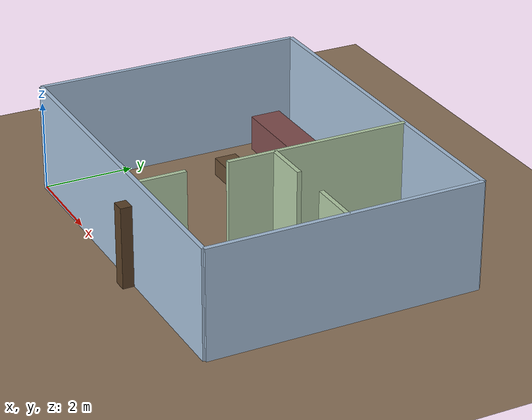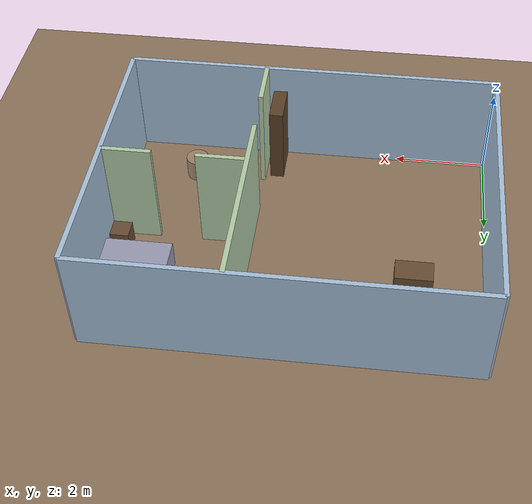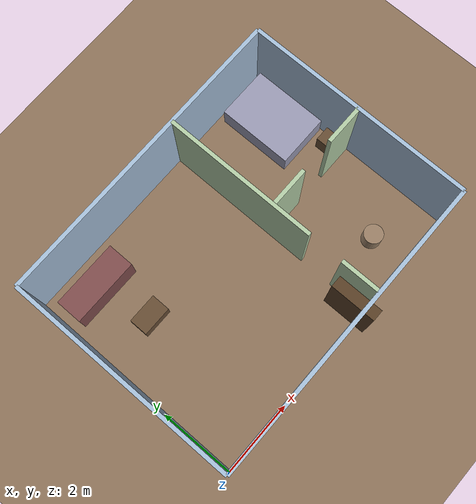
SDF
<?xml version="1.0" ?>
<sdf version="1.9">
  <world name="apartment_world">
    <physics name="1ms" type="ignored">
      <max_step_size>0.001</max_step_size>
      <real_time_factor>1.0</real_time_factor>
    </physics>
    <plugin filename="gz-sim-physics-system" name="gz::sim::systems::Physics"></plugin>
    <plugin filename="gz-sim-user-commands-system" name="gz::sim::systems::UserCommands"></plugin>
    <plugin filename="gz-sim-scene-broadcaster-system" name="gz::sim::systems::SceneBroadcaster"></plugin>
    <plugin filename="gz-sim-sensors-system" name="gz::sim::systems::Sensors">
      <render_engine>ogre2</render_engine>
    </plugin>
    <plugin filename="gz-sim-contact-system" name="gz::sim::systems::Contact"></plugin>
    <plugin filename="gz-sim-imu-system" name="gz::sim::systems::Imu"></plugin>

    <light type="directional" name="sun">
      <cast_shadows>true</cast_shadows>
      <pose>0 0 10 0 0 0</pose>
      <diffuse>0.8 0.8 0.8 1</diffuse>
      <specular>0.2 0.2 0.2 1</specular>
      <direction>-0.5 0.1 -0.9</direction>
    </light>

    <model name="ground_plane">
      <static>true</static>
      <link name="link">
        <collision name="collision">
          <geometry>
            <plane>
              <normal>0 0 1</normal>
              <size>12 8</size>
            </plane>
          </geometry>
        </collision>
        <visual name="visual">
          <geometry>
            <plane>
              <normal>0 0 1</normal>
              <size>12 8</size>
            </plane>
          </geometry>
          <material>
            <ambient>0.55 0.45 0.35 1</ambient>
            <diffuse>0.55 0.45 0.35 1</diffuse>
          </material>
        </visual>
      </link>
    </model>

    <!-- ****************** WALLS ****************** -->
    <!-- Reusable wall macro pattern hand-expanded below: each wall is a single
         static model with one box link. Pose is the segment's center; size is
         (length, thickness, height). -->

    <!-- Outer perimeter: 0<=x<=8, 0<=y<=6 -->
    <model name="wall_ext_south">
      <static>true</static>
      <pose>4 0 1.2 0 0 0</pose>
      <link name="link">
        <collision name="collision"><geometry><box><size>8 0.1 2.4</size></box></geometry></collision>
        <visual name="visual">
          <geometry><box><size>8 0.1 2.4</size></box></geometry>
          <material><ambient>0.65 0.75 0.85 1</ambient><diffuse>0.65 0.75 0.85 1</diffuse></material>
        </visual>
      </link>
    </model>

    <model name="wall_ext_north">
      <static>true</static>
      <pose>4 6 1.2 0 0 0</pose>
      <link name="link">
        <collision name="collision"><geometry><box><size>8 0.1 2.4</size></box></geometry></collision>
        <visual name="visual">
          <geometry><box><size>8 0.1 2.4</size></box></geometry>
          <material><ambient>0.65 0.75 0.85 1</ambient><diffuse>0.65 0.75 0.85 1</diffuse></material>
        </visual>
      </link>
    </model>

    <model name="wall_ext_west">
      <static>true</static>
      <pose>0 3 1.2 0 0 1.5708</pose>
      <link name="link">
        <collision name="collision"><geometry><box><size>6 0.1 2.4</size></box></geometry></collision>
        <visual name="visual">
          <geometry><box><size>6 0.1 2.4</size></box></geometry>
          <material><ambient>0.65 0.75 0.85 1</ambient><diffuse>0.65 0.75 0.85 1</diffuse></material>
        </visual>
      </link>
    </model>

    <model name="wall_ext_east">
      <static>true</static>
      <pose>8 3 1.2 0 0 1.5708</pose>
      <link name="link">
        <collision name="collision"><geometry><box><size>6 0.1 2.4</size></box></geometry></collision>
        <visual name="visual">
          <geometry><box><size>6 0.1 2.4</size></box></geometry>
          <material><ambient>0.65 0.75 0.85 1</ambient><diffuse>0.65 0.75 0.85 1</diffuse></material>
        </visual>
      </link>
    </model>

    <model name="wall_int_vertical_a">
      <static>true</static>
      <pose>5 0.525 1.2 0 0 1.5708</pose>
      <link name="link">
        <collision name="collision"><geometry><box><size>1.05 0.1 2.4</size></box></geometry></collision>
        <visual name="visual">
          <geometry><box><size>1.05 0.1 2.4</size></box></geometry>
          <material><ambient>0.7 0.8 0.65 1</ambient><diffuse>0.7 0.8 0.65 1</diffuse></material>
        </visual>
      </link>
    </model>

    <model name="wall_int_vertical_b">
      <static>true</static>
      <pose>5 3.975 1.2 0 0 1.5708</pose>
      <link name="link">
        <collision name="collision"><geometry><box><size>4.05 0.1 2.4</size></box></geometry></collision>
        <visual name="visual">
          <geometry><box><size>4.05 0.1 2.4</size></box></geometry>
          <material><ambient>0.7 0.8 0.65 1</ambient><diffuse>0.7 0.8 0.65 1</diffuse></material>
        </visual>
      </link>
    </model>

    <!-- Interior partition at y=3 (x in [5,8]), separating hallway (y<3) from
         bedroom (y>3). Split into two segments with a 0.9m doorway gap
         centered at x=6.5. -->
    <model name="wall_int_horizontal_a">
      <static>true</static>
      <pose>5.525 3 1.2 0 0 0</pose>
      <link name="link">
        <collision name="collision"><geometry><box><size>1.05 0.1 2.4</size></box></geometry></collision>
        <visual name="visual">
          <geometry><box><size>1.05 0.1 2.4</size></box></geometry>
          <material><ambient>0.7 0.8 0.65 1</ambient><diffuse>0.7 0.8 0.65 1</diffuse></material>
        </visual>
      </link>
    </model>

    <model name="wall_int_horizontal_b">
      <static>true</static>
      <pose>7.475 3 1.2 0 0 0</pose>
      <link name="link">
        <collision name="collision"><geometry><box><size>1.05 0.1 2.4</size></box></geometry></collision>
        <visual name="visual">
          <geometry><box><size>1.05 0.1 2.4</size></box></geometry>
          <material><ambient>0.7 0.8 0.65 1</ambient><diffuse>0.7 0.8 0.65 1</diffuse></material>
        </visual>
      </link>
    </model>

    <!-- ****************** FURNITURE OBSTACLES ****************** -->
    <!-- Plain static primitives, placeholder geometry only (DESIGN_SPEC
         PHY-004 philosophy applied to world furniture too: navigation-relevant
         obstacles, not final decor). -->

    <model name="obstacle_sofa">
      <static>true</static>
      <pose>1.2 5.2 0.4 0 0 0</pose>
      <link name="link">
        <collision name="collision"><geometry><box><size>1.8 0.7 0.8</size></box></geometry></collision>
        <visual name="visual">
          <geometry><box><size>1.8 0.7 0.8</size></box></geometry>
          <material><ambient>0.5 0.3 0.3 1</ambient><diffuse>0.5 0.3 0.3 1</diffuse></material>
        </visual>
      </link>
    </model>

    <model name="obstacle_coffee_table">
      <static>true</static>
      <pose>1.5 3.8 0.2 0 0 0</pose>
      <link name="link">
        <collision name="collision"><geometry><box><size>0.8 0.5 0.4</size></box></geometry></collision>
        <visual name="visual">
          <geometry><box><size>0.8 0.5 0.4</size></box></geometry>
          <material><ambient>0.4 0.3 0.2 1</ambient><diffuse>0.4 0.3 0.2 1</diffuse></material>
        </visual>
      </link>
    </model>

    <model name="obstacle_bookshelf">
      <static>true</static>
      <pose>4.7 0.3 0.9 0 0 0</pose>
      <link name="link">
        <collision name="collision"><geometry><box><size>0.3 1.2 1.8</size></box></geometry></collision>
        <visual name="visual">
          <geometry><box><size>0.3 1.2 1.8</size></box></geometry>
          <material><ambient>0.35 0.25 0.15 1</ambient><diffuse>0.35 0.25 0.15 1</diffuse></material>
        </visual>
      </link>
    </model>

    <model name="obstacle_bed">
      <static>true</static>
      <pose>7.2 4.8 0.3 0 0 0</pose>
      <link name="link">
        <collision name="collision"><geometry><box><size>1.4 2.0 0.6</size></box></geometry></collision>
        <visual name="visual">
          <geometry><box><size>1.4 2.0 0.6</size></box></geometry>
          <material><ambient>0.6 0.6 0.7 1</ambient><diffuse>0.6 0.6 0.7 1</diffuse></material>
        </visual>
      </link>
    </model>

    <model name="obstacle_nightstand">
      <static>true</static>
      <pose>7.7 3.4 0.25 0 0 0</pose>
      <link name="link">
        <collision name="collision"><geometry><box><size>0.4 0.4 0.5</size></box></geometry></collision>
        <visual name="visual">
          <geometry><box><size>0.4 0.4 0.5</size></box></geometry>
          <material><ambient>0.4 0.3 0.2 1</ambient><diffuse>0.4 0.3 0.2 1</diffuse></material>
        </visual>
      </link>
    </model>

    <model name="obstacle_hallway_box">
      <static>true</static>
      <pose>6.5 1.0 0.25 0 0 0</pose>
      <link name="link">
        <collision name="collision"><geometry><cylinder><radius>0.25</radius><length>0.5</length></cylinder></geometry></collision>
        <visual name="visual">
          <geometry><cylinder><radius>0.25</radius><length>0.5</length></cylinder></geometry>
          <material><ambient>0.6 0.5 0.4 1</ambient><diffuse>0.6 0.5 0.4 1</diffuse></material>
        </visual>
      </link>
    </model>
  </world>
</sdf>
